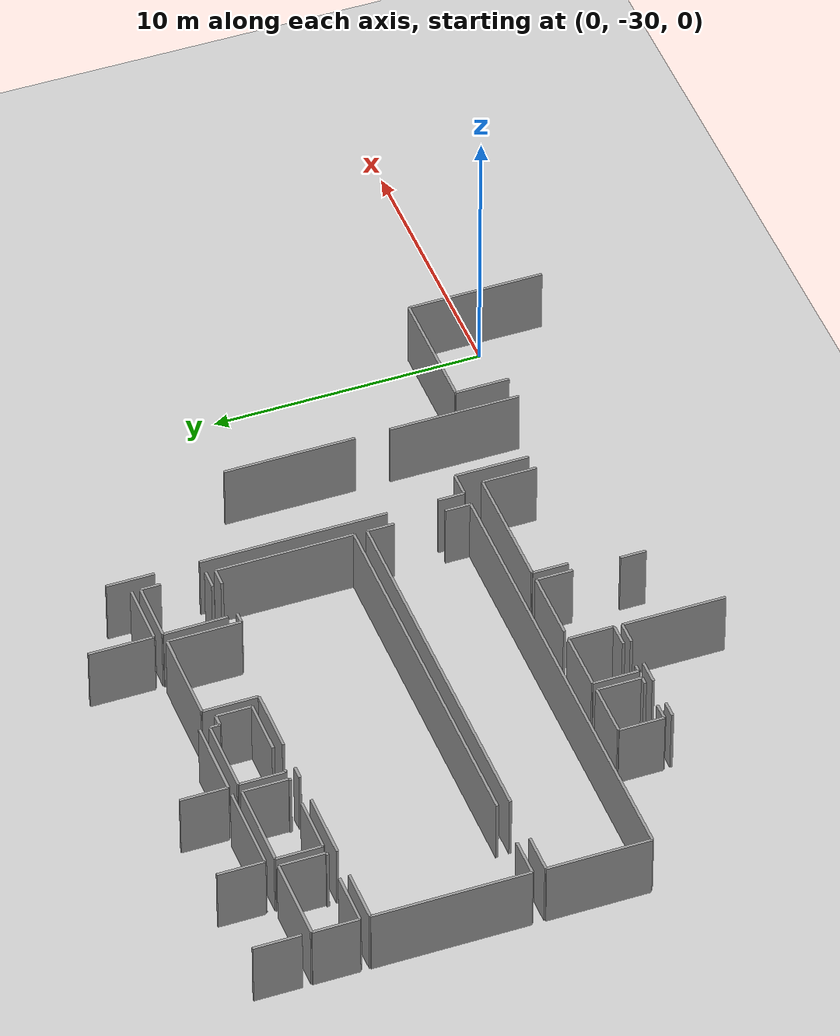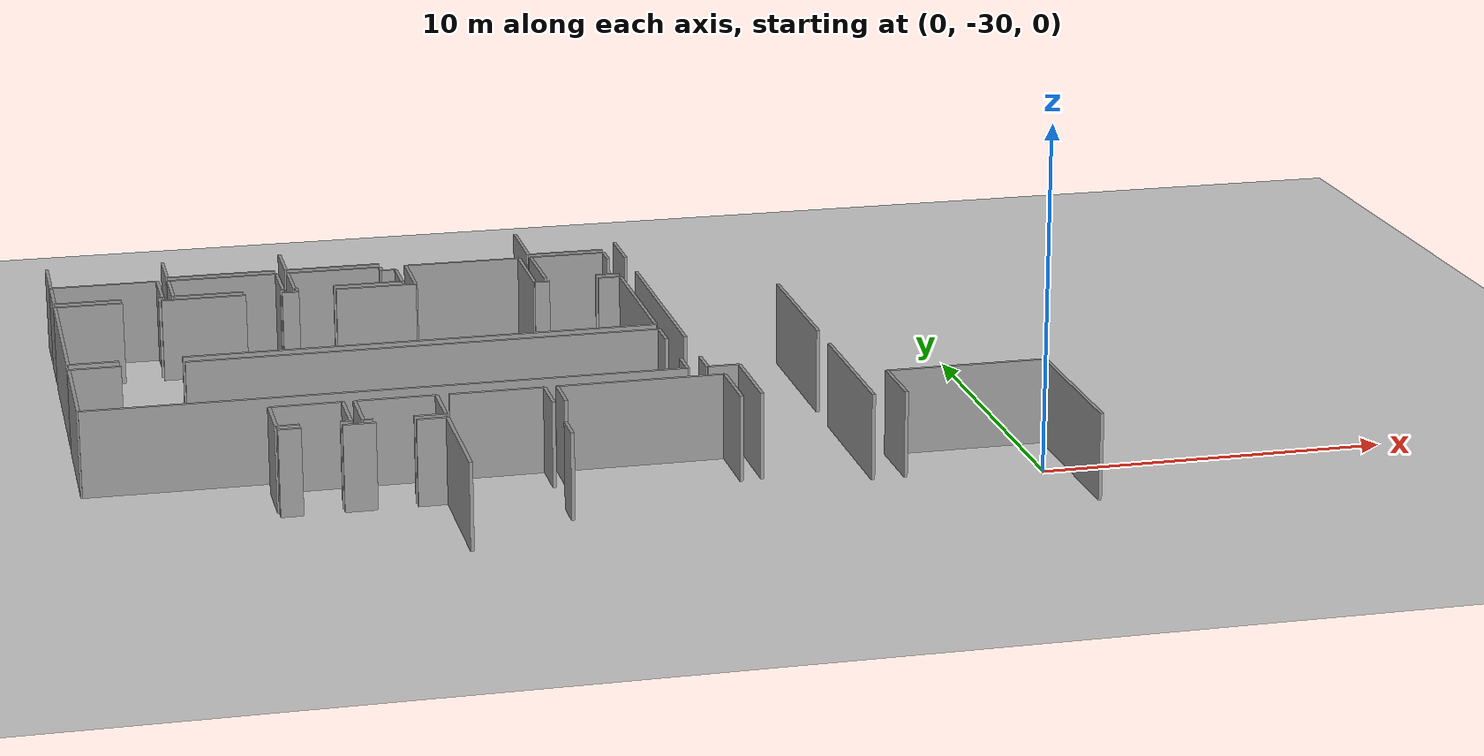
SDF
<sdf version="1.6">
 <world name="default">
  <model name="ground_plane">
   <static>1</static>
   <link name="link">
    <collision name="collision">
     <geometry><plane><normal>0 0 1</normal><size>100 100</size></plane></geometry>
     <surface><friction><ode><mu>100</mu><mu2>50</mu2></ode></friction></surface>
    </collision>
    <visual name="visual">
     <cast_shadows>0</cast_shadows>
     <geometry><plane><normal>0 0 1</normal><size>100 100</size></plane></geometry>
     <material>
      <script><uri>file://media/materials/scripts/gazebo.material</uri><name>Gazebo/Grey</name></script>
     </material>
    </visual>
   </link>
  </model>
  <model name="0510045925_40">
   <static>1</static>
   <link name="Wall_1019">
    <collision name="Wall_1019_Collision">
     <geometry><box><size>1.71772290043 0.1 2.5</size></box></geometry>
     <pose>0.858861450217 0 1.25 0 0 0</pose>
    </collision>
    <visual name="Wall_1019_Visual">
     <pose>0.858861450217 0 1.25 0 0 0</pose>
     <geometry><box><size>1.71772290043 0.1 2.5</size></box></geometry>
     <material>
      <script><uri>file://media/materials/scripts/gazebo.material</uri><name>Gazebo/Grey</name></script>
      <ambient>1 1 1 1</ambient>
     </material>
    </visual>
    <pose>107.613309307 -114.830765717 0 0 0 1.57079632679</pose>
   </link>
   <link name="Wall_1024">
    <collision name="Wall_1024_Collision">
     <geometry><box><size>1.70173345854 0.1 2.5</size></box></geometry>
     <pose>0.850866729271 0 1.25 0 0 0</pose>
    </collision>
    <visual name="Wall_1024_Visual">
     <pose>0.850866729271 0 1.25 0 0 0</pose>
     <geometry><box><size>1.70173345854 0.1 2.5</size></box></geometry>
     <material>
      <script><uri>file://media/materials/scripts/gazebo.material</uri><name>Gazebo/Grey</name></script>
      <ambient>1 1 1 1</ambient>
     </material>
    </visual>
    <pose>111.141899952 -114.825435903 0 0 0 1.57079632679</pose>
   </link>
   <link name="Wall_1028">
    <collision name="Wall_1028_Collision">
     <geometry><box><size>3.28570344775 0.1 2.5</size></box></geometry>
     <pose>1.64285172388 0 1.25 0 0 0</pose>
    </collision>
    <visual name="Wall_1028_Visual">
     <pose>1.64285172388 0 1.25 0 0 0</pose>
     <geometry><box><size>3.28570344775 0.1 2.5</size></box></geometry>
     <material>
      <script><uri>file://media/materials/scripts/gazebo.material</uri><name>Gazebo/Grey</name></script>
      <ambient>1 1 1 1</ambient>
     </material>
    </visual>
    <pose>114.42760336 -114.824928301 0 0 0 -3.14143816572</pose>
   </link>
   <link name="Wall_1029">
    <collision name="Wall_1029_Collision">
     <geometry><box><size>1.72127610974 0.1 2.5</size></box></geometry>
     <pose>0.860638054872 0 1.25 0 0 0</pose>
    </collision>
    <visual name="Wall_1029_Visual">
     <pose>0.860638054872 0 1.25 0 0 0</pose>
     <geometry><box><size>1.72127610974 0.1 2.5</size></box></geometry>
     <material>
      <script><uri>file://media/materials/scripts/gazebo.material</uri><name>Gazebo/Grey</name></script>
      <ambient>1 1 1 1</ambient>
     </material>
    </visual>
    <pose>114.768457653 -114.824928301 0 0 0 1.57079632679</pose>
   </link>
   <link name="Wall_1035">
    <collision name="Wall_1035_Collision">
     <geometry><box><size>2.86439542912 0.1 2.5</size></box></geometry>
     <pose>1.43219771456 0 1.25 0 0 0</pose>
    </collision>
    <visual name="Wall_1035_Visual">
     <pose>1.43219771456 0 1.25 0 0 0</pose>
     <geometry><box><size>2.86439542912 0.1 2.5</size></box></geometry>
     <material>
      <script><uri>file://media/materials/scripts/gazebo.material</uri><name>Gazebo/Grey</name></script>
      <ambient>1 1 1 1</ambient>
     </material>
    </visual>
    <pose>117.632851958 -114.822390295 0 0 0 -3.1407066003</pose>
   </link>
   <link name="Wall_1036">
    <collision name="Wall_1036_Collision">
     <geometry><box><size>2.35882338012 0.1 2.5</size></box></geometry>
     <pose>1.17941169006 0 1.25 0 0 0</pose>
    </collision>
    <visual name="Wall_1036_Visual">
     <pose>1.17941169006 0 1.25 0 0 0</pose>
     <geometry><box><size>2.35882338012 0.1 2.5</size></box></geometry>
     <material>
      <script><uri>file://media/materials/scripts/gazebo.material</uri><name>Gazebo/Grey</name></script>
      <ambient>1 1 1 1</ambient>
     </material>
    </visual>
    <pose>122.324864851 -114.837872135 0 0 0 1.57079632679</pose>
   </link>
   <link name="Wall_1039">
    <collision name="Wall_1039_Collision">
     <geometry><box><size>2.33699790108 0.1 2.5</size></box></geometry>
     <pose>1.16849895054 0 1.25 0 0 0</pose>
    </collision>
    <visual name="Wall_1039_Visual">
     <pose>1.16849895054 0 1.25 0 0 0</pose>
     <geometry><box><size>2.33699790108 0.1 2.5</size></box></geometry>
     <material>
      <script><uri>file://media/materials/scripts/gazebo.material</uri><name>Gazebo/Grey</name></script>
      <ambient>1 1 1 1</ambient>
     </material>
    </visual>
    <pose>124.661861374 -114.835334129 0 0 0 -3.14050664185</pose>
   </link>
   <link name="Wall_1052">
    <collision name="Wall_1052_Collision">
     <geometry><box><size>1.68701301997 0.1 2.5</size></box></geometry>
     <pose>0.843506509987 0 1.25 0 0 0</pose>
    </collision>
    <visual name="Wall_1052_Visual">
     <pose>0.843506509987 0 1.25 0 0 0</pose>
     <geometry><box><size>1.68701301997 0.1 2.5</size></box></geometry>
     <material>
      <script><uri>file://media/materials/scripts/gazebo.material</uri><name>Gazebo/Grey</name></script>
      <ambient>1 1 1 1</ambient>
     </material>
    </visual>
    <pose>107.613563108 -116.85863303 0 0 0 1.57079632679</pose>
   </link>
   <link name="Wall_1053">
    <collision name="Wall_1053_Collision">
     <geometry><box><size>3.20068018578 0.1 2.5</size></box></geometry>
     <pose>1.60034009289 0 1.25 0 0 0</pose>
    </collision>
    <visual name="Wall_1053_Visual">
     <pose>1.60034009289 0 1.25 0 0 0</pose>
     <geometry><box><size>3.20068018578 0.1 2.5</size></box></geometry>
     <material>
      <script><uri>file://media/materials/scripts/gazebo.material</uri><name>Gazebo/Grey</name></script>
      <ambient>1 1 1 1</ambient>
     </material>
    </visual>
    <pose>107.613563108 -115.17162001 0 0 0 0.0</pose>
   </link>
   <link name="Wall_1054">
    <collision name="Wall_1054_Collision">
     <geometry><box><size>1.69056622928 0.1 2.5</size></box></geometry>
     <pose>0.845283114642 0 1.25 0 0 0</pose>
    </collision>
    <visual name="Wall_1054_Visual">
     <pose>0.845283114642 0 1.25 0 0 0</pose>
     <geometry><box><size>1.69056622928 0.1 2.5</size></box></geometry>
     <material>
      <script><uri>file://media/materials/scripts/gazebo.material</uri><name>Gazebo/Grey</name></script>
      <ambient>1 1 1 1</ambient>
     </material>
    </visual>
    <pose>110.814243293 -115.17162001 0 0 0 -1.57079632679</pose>
   </link>
   <link name="Wall_1055">
    <collision name="Wall_1055_Collision">
     <geometry><box><size>0.117002106546 0.1 2.5</size></box></geometry>
     <pose>0.0585010532728 0 1.25 0 0 0</pose>
    </collision>
    <visual name="Wall_1055_Visual">
     <pose>0.0585010532728 0 1.25 0 0 0</pose>
     <geometry><box><size>0.117002106546 0.1 2.5</size></box></geometry>
     <material>
      <script><uri>file://media/materials/scripts/gazebo.material</uri><name>Gazebo/Grey</name></script>
      <ambient>1 1 1 1</ambient>
     </material>
    </visual>
    <pose>110.814243293 -116.862186239 0 0 0 3.14159265359</pose>
   </link>
   <link name="Wall_1056">
    <collision name="Wall_1056_Collision">
     <geometry><box><size>1.96365895952 0.1 2.5</size></box></geometry>
     <pose>0.981829479759 0 1.25 0 0 0</pose>
    </collision>
    <visual name="Wall_1056_Visual">
     <pose>0.981829479759 0 1.25 0 0 0</pose>
     <geometry><box><size>1.96365895952 0.1 2.5</size></box></geometry>
     <material>
      <script><uri>file://media/materials/scripts/gazebo.material</uri><name>Gazebo/Grey</name></script>
      <ambient>1 1 1 1</ambient>
     </material>
    </visual>
    <pose>109.577218852 -116.862186239 0 0 0 3.13978316868</pose>
   </link>
   <link name="Wall_1057">
    <collision name="Wall_1057_Collision">
     <geometry><box><size>1.67736859471 0.1 2.5</size></box></geometry>
     <pose>0.838684297353 0 1.25 0 0 0</pose>
    </collision>
    <visual name="Wall_1057_Visual">
     <pose>0.838684297353 0 1.25 0 0 0</pose>
     <geometry><box><size>1.67736859471 0.1 2.5</size></box></geometry>
     <material>
      <script><uri>file://media/materials/scripts/gazebo.material</uri><name>Gazebo/Grey</name></script>
      <ambient>1 1 1 1</ambient>
     </material>
    </visual>
    <pose>111.138854344 -116.85863303 0 0 0 1.57079632679</pose>
   </link>
   <link name="Wall_1058">
    <collision name="Wall_1058_Collision">
     <geometry><box><size>3.29484023248 0.1 2.5</size></box></geometry>
     <pose>1.64742011624 0 1.25 0 0 0</pose>
    </collision>
    <visual name="Wall_1058_Visual">
     <pose>1.64742011624 0 1.25 0 0 0</pose>
     <geometry><box><size>3.29484023248 0.1 2.5</size></box></geometry>
     <material>
      <script><uri>file://media/materials/scripts/gazebo.material</uri><name>Gazebo/Grey</name></script>
      <ambient>1 1 1 1</ambient>
     </material>
    </visual>
    <pose>111.138854344 -115.181264435 0 0 0 0.0</pose>
   </link>
   <link name="Wall_1059">
    <collision name="Wall_1059_Collision">
     <geometry><box><size>1.68904342529 0.1 2.5</size></box></geometry>
     <pose>0.844521712647 0 1.25 0 0 0</pose>
    </collision>
    <visual name="Wall_1059_Visual">
     <pose>0.844521712647 0 1.25 0 0 0</pose>
     <geometry><box><size>1.68904342529 0.1 2.5</size></box></geometry>
     <material>
      <script><uri>file://media/materials/scripts/gazebo.material</uri><name>Gazebo/Grey</name></script>
      <ambient>1 1 1 1</ambient>
     </material>
    </visual>
    <pose>114.433694576 -115.181264435 0 0 0 -1.57079632679</pose>
   </link>
   <link name="Wall_1060">
    <collision name="Wall_1060_Collision">
     <geometry><box><size>0.0855308240908 0.1 2.5</size></box></geometry>
     <pose>0.0427654120454 0 1.25 0 0 0</pose>
    </collision>
    <visual name="Wall_1060_Visual">
     <pose>0.0427654120454 0 1.25 0 0 0</pose>
     <geometry><box><size>0.0855308240908 0.1 2.5</size></box></geometry>
     <material>
      <script><uri>file://media/materials/scripts/gazebo.material</uri><name>Gazebo/Grey</name></script>
      <ambient>1 1 1 1</ambient>
     </material>
    </visual>
    <pose>114.433694576 -116.87030786 0 0 0 3.14159265359</pose>
   </link>
   <link name="Wall_1061">
    <collision name="Wall_1061_Collision">
     <geometry><box><size>2.09261905007 0.1 2.5</size></box></geometry>
     <pose>1.04630952504 0 1.25 0 0 0</pose>
    </collision>
    <visual name="Wall_1061_Visual">
     <pose>1.04630952504 0 1.25 0 0 0</pose>
     <geometry><box><size>2.09261905007 0.1 2.5</size></box></geometry>
     <material>
      <script><uri>file://media/materials/scripts/gazebo.material</uri><name>Gazebo/Grey</name></script>
      <ambient>1 1 1 1</ambient>
     </material>
    </visual>
    <pose>113.231440826 -116.87030786 0 0 0 3.1360135726</pose>
   </link>
   <link name="Wall_1062">
    <collision name="Wall_1062_Collision">
     <geometry><box><size>1.7027486612 0.1 2.5</size></box></geometry>
     <pose>0.851374330601 0 1.25 0 0 0</pose>
    </collision>
    <visual name="Wall_1062_Visual">
     <pose>0.851374330601 0 1.25 0 0 0</pose>
     <geometry><box><size>1.7027486612 0.1 2.5</size></box></geometry>
     <material>
      <script><uri>file://media/materials/scripts/gazebo.material</uri><name>Gazebo/Grey</name></script>
      <ambient>1 1 1 1</ambient>
     </material>
    </visual>
    <pose>114.77860968 -116.884013096 0 0 0 1.57079632679</pose>
   </link>
   <link name="Wall_1063">
    <collision name="Wall_1063_Collision">
     <geometry><box><size>2.84307504886 0.1 2.5</size></box></geometry>
     <pose>1.42153752443 0 1.25 0 0 0</pose>
    </collision>
    <visual name="Wall_1063_Visual">
     <pose>1.42153752443 0 1.25 0 0 0</pose>
     <geometry><box><size>2.84307504886 0.1 2.5</size></box></geometry>
     <material>
      <script><uri>file://media/materials/scripts/gazebo.material</uri><name>Gazebo/Grey</name></script>
      <ambient>1 1 1 1</ambient>
     </material>
    </visual>
    <pose>114.77860968 -115.181264435 0 0 0 0.0</pose>
   </link>
   <link name="Wall_1064">
    <collision name="Wall_1064_Collision">
     <geometry><box><size>0.359127940915 0.1 2.5</size></box></geometry>
     <pose>0.179563970458 0 1.25 0 0 0</pose>
    </collision>
    <visual name="Wall_1064_Visual">
     <pose>0.179563970458 0 1.25 0 0 0</pose>
     <geometry><box><size>0.359127940915 0.1 2.5</size></box></geometry>
     <material>
      <script><uri>file://media/materials/scripts/gazebo.material</uri><name>Gazebo/Grey</name></script>
      <ambient>1 1 1 1</ambient>
     </material>
    </visual>
    <pose>117.621684729 -115.181264435 0 0 0 -1.57079632679</pose>
   </link>
   <link name="Wall_1065">
    <collision name="Wall_1065_Collision">
     <geometry><box><size>0.439328951042 0.1 2.5</size></box></geometry>
     <pose>0.219664475521 0 1.25 0 0 0</pose>
    </collision>
    <visual name="Wall_1065_Visual">
     <pose>0.219664475521 0 1.25 0 0 0</pose>
     <geometry><box><size>0.439328951042 0.1 2.5</size></box></geometry>
     <material>
      <script><uri>file://media/materials/scripts/gazebo.material</uri><name>Gazebo/Grey</name></script>
      <ambient>1 1 1 1</ambient>
     </material>
    </visual>
    <pose>117.621684729 -115.540392376 0 0 0 0.0</pose>
   </link>
   <link name="Wall_1066">
    <collision name="Wall_1066_Collision">
     <geometry><box><size>1.30326641456 0.1 2.5</size></box></geometry>
     <pose>0.651633207279 0 1.25 0 0 0</pose>
    </collision>
    <visual name="Wall_1066_Visual">
     <pose>0.651633207279 0 1.25 0 0 0</pose>
     <geometry><box><size>1.30326641456 0.1 2.5</size></box></geometry>
     <material>
      <script><uri>file://media/materials/scripts/gazebo.material</uri><name>Gazebo/Grey</name></script>
      <ambient>1 1 1 1</ambient>
     </material>
    </visual>
    <pose>118.06101368 -115.540392376 0 0 0 -1.57079632679</pose>
   </link>
   <link name="Wall_1067">
    <collision name="Wall_1067_Collision">
     <geometry><box><size>2.09512448923 0.1 2.5</size></box></geometry>
     <pose>1.04756224461 0 1.25 0 0 0</pose>
    </collision>
    <visual name="Wall_1067_Visual">
     <pose>1.04756224461 0 1.25 0 0 0</pose>
     <geometry><box><size>2.09512448923 0.1 2.5</size></box></geometry>
     <material>
      <script><uri>file://media/materials/scripts/gazebo.material</uri><name>Gazebo/Grey</name></script>
      <ambient>1 1 1 1</ambient>
     </material>
    </visual>
    <pose>118.06101368 -116.84365879 0 0 0 3.14159265359</pose>
   </link>
   <link name="Wall_1068">
    <collision name="Wall_1068_Collision">
     <geometry><box><size>0.100115274627 0.1 2.5</size></box></geometry>
     <pose>0.0500576373136 0 1.25 0 0 0</pose>
    </collision>
    <visual name="Wall_1068_Visual">
     <pose>0.0500576373136 0 1.25 0 0 0</pose>
     <geometry><box><size>0.100115274627 0.1 2.5</size></box></geometry>
     <material>
      <script><uri>file://media/materials/scripts/gazebo.material</uri><name>Gazebo/Grey</name></script>
      <ambient>1 1 1 1</ambient>
     </material>
    </visual>
    <pose>114.87023172 -116.84365879 0 0 0 -2.72671451487</pose>
   </link>
   <link name="Wall_1069">
    <collision name="Wall_1069_Collision">
     <geometry><box><size>2.31237785843 0.1 2.5</size></box></geometry>
     <pose>1.15618892922 0 1.25 0 0 0</pose>
    </collision>
    <visual name="Wall_1069_Visual">
     <pose>1.15618892922 0 1.25 0 0 0</pose>
     <geometry><box><size>2.31237785843 0.1 2.5</size></box></geometry>
     <material>
      <script><uri>file://media/materials/scripts/gazebo.material</uri><name>Gazebo/Grey</name></script>
      <ambient>1 1 1 1</ambient>
     </material>
    </visual>
    <pose>122.336285881 -115.165528794 0 0 0 0.0</pose>
   </link>
   <link name="Wall_1070">
    <collision name="Wall_1070_Collision">
     <geometry><box><size>0.72028628715 0.1 2.5</size></box></geometry>
     <pose>0.360143143575 0 1.25 0 0 0</pose>
    </collision>
    <visual name="Wall_1070_Visual">
     <pose>0.360143143575 0 1.25 0 0 0</pose>
     <geometry><box><size>0.72028628715 0.1 2.5</size></box></geometry>
     <material>
      <script><uri>file://media/materials/scripts/gazebo.material</uri><name>Gazebo/Grey</name></script>
      <ambient>1 1 1 1</ambient>
     </material>
    </visual>
    <pose>124.648663739 -115.165528794 0 0 0 -1.57079632679</pose>
   </link>
   <link name="Wall_1071">
    <collision name="Wall_1071_Collision">
     <geometry><box><size>0.724854699119 0.1 2.5</size></box></geometry>
     <pose>0.36242734956 0 1.25 0 0 0</pose>
    </collision>
    <visual name="Wall_1071_Visual">
     <pose>0.36242734956 0 1.25 0 0 0</pose>
     <geometry><box><size>0.724854699119 0.1 2.5</size></box></geometry>
     <material>
      <script><uri>file://media/materials/scripts/gazebo.material</uri><name>Gazebo/Grey</name></script>
      <ambient>1 1 1 1</ambient>
     </material>
    </visual>
    <pose>124.648663739 -117.517245755 0 0 0 3.14159265359</pose>
   </link>
   <link name="Wall_1072">
    <collision name="Wall_1072_Collision">
     <geometry><box><size>2.35189182985 0.1 2.5</size></box></geometry>
     <pose>1.17594591492 0 1.25 0 0 0</pose>
    </collision>
    <visual name="Wall_1072_Visual">
     <pose>1.17594591492 0 1.25 0 0 0</pose>
     <geometry><box><size>2.35189182985 0.1 2.5</size></box></geometry>
     <material>
      <script><uri>file://media/materials/scripts/gazebo.material</uri><name>Gazebo/Grey</name></script>
      <ambient>1 1 1 1</ambient>
     </material>
    </visual>
    <pose>122.364965356 -117.517245755 0 0 0 1.58299084424</pose>
   </link>
   <link name="Wall_1073">
    <collision name="Wall_1073_Collision">
     <geometry><box><size>5.69579452298 0.1 2.5</size></box></geometry>
     <pose>2.84789726149 0 1.25 0 0 0</pose>
    </collision>
    <visual name="Wall_1073_Visual">
     <pose>2.84789726149 0 1.25 0 0 0</pose>
     <geometry><box><size>5.69579452298 0.1 2.5</size></box></geometry>
     <material>
      <script><uri>file://media/materials/scripts/gazebo.material</uri><name>Gazebo/Grey</name></script>
      <ambient>1 1 1 1</ambient>
     </material>
    </visual>
    <pose>107.609248496 -122.91228649 0 0 0 1.57079632679</pose>
   </link>
   <link name="Wall_1074">
    <collision name="Wall_1074_Collision">
     <geometry><box><size>1.98852820994 0.1 2.5</size></box></geometry>
     <pose>0.994264104972 0 1.25 0 0 0</pose>
    </collision>
    <visual name="Wall_1074_Visual">
     <pose>0.994264104972 0 1.25 0 0 0</pose>
     <geometry><box><size>1.98852820994 0.1 2.5</size></box></geometry>
     <material>
      <script><uri>file://media/materials/scripts/gazebo.material</uri><name>Gazebo/Grey</name></script>
      <ambient>1 1 1 1</ambient>
     </material>
    </visual>
    <pose>107.609248496 -117.216491967 0 0 0 0.0</pose>
   </link>
   <link name="Wall_1075">
    <collision name="Wall_1075_Collision">
     <geometry><box><size>2.52303241034 0.1 2.5</size></box></geometry>
     <pose>1.26151620517 0 1.25 0 0 0</pose>
    </collision>
    <visual name="Wall_1075_Visual">
     <pose>1.26151620517 0 1.25 0 0 0</pose>
     <geometry><box><size>2.52303241034 0.1 2.5</size></box></geometry>
     <material>
      <script><uri>file://media/materials/scripts/gazebo.material</uri><name>Gazebo/Grey</name></script>
      <ambient>1 1 1 1</ambient>
     </material>
    </visual>
    <pose>110.74825512 -117.216491967 0 0 0 0.0</pose>
   </link>
   <link name="Wall_1076">
    <collision name="Wall_1076_Collision">
     <geometry><box><size>0.502779117281 0.1 2.5</size></box></geometry>
     <pose>0.251389558641 0 1.25 0 0 0</pose>
    </collision>
    <visual name="Wall_1076_Visual">
     <pose>0.251389558641 0 1.25 0 0 0</pose>
     <geometry><box><size>0.502779117281 0.1 2.5</size></box></geometry>
     <material>
      <script><uri>file://media/materials/scripts/gazebo.material</uri><name>Gazebo/Grey</name></script>
      <ambient>1 1 1 1</ambient>
     </material>
    </visual>
    <pose>114.362376589 -117.216491967 0 0 0 0.0</pose>
   </link>
   <link name="Wall_1077">
    <collision name="Wall_1077_Collision">
     <geometry><box><size>2.42709575899 0.1 2.5</size></box></geometry>
     <pose>1.2135478795 0 1.25 0 0 0</pose>
    </collision>
    <visual name="Wall_1077_Visual">
     <pose>1.2135478795 0 1.25 0 0 0</pose>
     <geometry><box><size>2.42709575899 0.1 2.5</size></box></geometry>
     <material>
      <script><uri>file://media/materials/scripts/gazebo.material</uri><name>Gazebo/Grey</name></script>
      <ambient>1 1 1 1</ambient>
     </material>
    </visual>
    <pose>115.991269257 -117.216491967 0 0 0 0.0</pose>
   </link>
   <link name="Wall_1078">
    <collision name="Wall_1078_Collision">
     <geometry><box><size>2.0352275323 0.1 2.5</size></box></geometry>
     <pose>1.01761376615 0 1.25 0 0 0</pose>
    </collision>
    <visual name="Wall_1078_Visual">
     <pose>1.01761376615 0 1.25 0 0 0</pose>
     <geometry><box><size>2.0352275323 0.1 2.5</size></box></geometry>
     <material>
      <script><uri>file://media/materials/scripts/gazebo.material</uri><name>Gazebo/Grey</name></script>
      <ambient>1 1 1 1</ambient>
     </material>
    </visual>
    <pose>118.418365016 -117.216491967 0 0 0 1.57079632679</pose>
   </link>
   <link name="Wall_1079">
    <collision name="Wall_1079_Collision">
     <geometry><box><size>3.55092510342 0.1 2.5</size></box></geometry>
     <pose>1.77546255171 0 1.25 0 0 0</pose>
    </collision>
    <visual name="Wall_1079_Visual">
     <pose>1.77546255171 0 1.25 0 0 0</pose>
     <geometry><box><size>3.55092510342 0.1 2.5</size></box></geometry>
     <material>
      <script><uri>file://media/materials/scripts/gazebo.material</uri><name>Gazebo/Grey</name></script>
      <ambient>1 1 1 1</ambient>
     </material>
    </visual>
    <pose>118.418365016 -115.181264435 0 0 0 0.0</pose>
   </link>
   <link name="Wall_1080">
    <collision name="Wall_1080_Collision">
     <geometry><box><size>2.67810461663 0.1 2.5</size></box></geometry>
     <pose>1.33905230832 0 1.25 0 0 0</pose>
    </collision>
    <visual name="Wall_1080_Visual">
     <pose>1.33905230832 0 1.25 0 0 0</pose>
     <geometry><box><size>2.67810461663 0.1 2.5</size></box></geometry>
     <material>
      <script><uri>file://media/materials/scripts/gazebo.material</uri><name>Gazebo/Grey</name></script>
      <ambient>1 1 1 1</ambient>
     </material>
    </visual>
    <pose>121.96929012 -115.181264435 0 0 0 -1.57079632679</pose>
   </link>
   <link name="Wall_1081">
    <collision name="Wall_1081_Collision">
     <geometry><box><size>0.447704372985 0.1 2.5</size></box></geometry>
     <pose>0.223852186493 0 1.25 0 0 0</pose>
    </collision>
    <visual name="Wall_1081_Visual">
     <pose>0.223852186493 0 1.25 0 0 0</pose>
     <geometry><box><size>0.447704372985 0.1 2.5</size></box></geometry>
     <material>
      <script><uri>file://media/materials/scripts/gazebo.material</uri><name>Gazebo/Grey</name></script>
      <ambient>1 1 1 1</ambient>
     </material>
    </visual>
    <pose>121.96929012 -117.859369052 0 0 0 0.0</pose>
   </link>
   <link name="Wall_1082">
    <collision name="Wall_1082_Collision">
     <geometry><box><size>0.69262201467 0.1 2.5</size></box></geometry>
     <pose>0.346311007335 0 1.25 0 0 0</pose>
    </collision>
    <visual name="Wall_1082_Visual">
     <pose>0.346311007335 0 1.25 0 0 0</pose>
     <geometry><box><size>0.69262201467 0.1 2.5</size></box></geometry>
     <material>
      <script><uri>file://media/materials/scripts/gazebo.material</uri><name>Gazebo/Grey</name></script>
      <ambient>1 1 1 1</ambient>
     </material>
    </visual>
    <pose>123.939290881 -117.859369052 0 0 0 0.0</pose>
   </link>
   <link name="Wall_1083">
    <collision name="Wall_1083_Collision">
     <geometry><box><size>5.05063323266 0.1 2.5</size></box></geometry>
     <pose>2.52531661633 0 1.25 0 0 0</pose>
    </collision>
    <visual name="Wall_1083_Visual">
     <pose>2.52531661633 0 1.25 0 0 0</pose>
     <geometry><box><size>5.05063323266 0.1 2.5</size></box></geometry>
     <material>
      <script><uri>file://media/materials/scripts/gazebo.material</uri><name>Gazebo/Grey</name></script>
      <ambient>1 1 1 1</ambient>
     </material>
    </visual>
    <pose>124.631912896 -117.859369052 0 0 0 -1.57079632679</pose>
   </link>
   <link name="Wall_1084">
    <collision name="Wall_1084_Collision">
     <geometry><box><size>13.7892439278 0.1 2.5</size></box></geometry>
     <pose>6.89462196391 0 1.25 0 0 0</pose>
    </collision>
    <visual name="Wall_1084_Visual">
     <pose>6.89462196391 0 1.25 0 0 0</pose>
     <geometry><box><size>13.7892439278 0.1 2.5</size></box></geometry>
     <material>
      <script><uri>file://media/materials/scripts/gazebo.material</uri><name>Gazebo/Grey</name></script>
      <ambient>1 1 1 1</ambient>
     </material>
    </visual>
    <pose>124.631912896 -122.910002284 0 0 0 3.14159265359</pose>
   </link>
   <link name="Wall_1085">
    <collision name="Wall_1085_Collision">
     <geometry><box><size>1.43549837835 0.1 2.5</size></box></geometry>
     <pose>0.717749189175 0 1.25 0 0 0</pose>
    </collision>
    <visual name="Wall_1085_Visual">
     <pose>0.717749189175 0 1.25 0 0 0</pose>
     <geometry><box><size>1.43549837835 0.1 2.5</size></box></geometry>
     <material>
      <script><uri>file://media/materials/scripts/gazebo.material</uri><name>Gazebo/Grey</name></script>
      <ambient>1 1 1 1</ambient>
     </material>
    </visual>
    <pose>109.044745057 -122.910002284 0 0 0 -3.14000142438</pose>
   </link>
   <link name="Wall_1086">
    <collision name="Wall_1086_Collision">
     <geometry><box><size>3.77553869191 0.1 2.5</size></box></geometry>
     <pose>1.88776934596 0 1.25 0 0 0</pose>
    </collision>
    <visual name="Wall_1086_Visual">
     <pose>1.88776934596 0 1.25 0 0 0</pose>
     <geometry><box><size>3.77553869191 0.1 2.5</size></box></geometry>
     <material>
      <script><uri>file://media/materials/scripts/gazebo.material</uri><name>Gazebo/Grey</name></script>
      <ambient>1 1 1 1</ambient>
     </material>
    </visual>
    <pose>107.604680084 -127.161417223 0 0 0 1.57079632679</pose>
   </link>
   <link name="Wall_1087">
    <collision name="Wall_1087_Collision">
     <geometry><box><size>1.46417603614 0.1 2.5</size></box></geometry>
     <pose>0.732088018071 0 1.25 0 0 0</pose>
    </collision>
    <visual name="Wall_1087_Visual">
     <pose>0.732088018071 0 1.25 0 0 0</pose>
     <geometry><box><size>1.46417603614 0.1 2.5</size></box></geometry>
     <material>
      <script><uri>file://media/materials/scripts/gazebo.material</uri><name>Gazebo/Grey</name></script>
      <ambient>1 1 1 1</ambient>
     </material>
    </visual>
    <pose>107.604680084 -123.385878531 0 0 0 0.0</pose>
   </link>
   <link name="Wall_1088">
    <collision name="Wall_1088_Collision">
     <geometry><box><size>13.7661480673 0.1 2.5</size></box></geometry>
     <pose>6.88307403365 0 1.25 0 0 0</pose>
    </collision>
    <visual name="Wall_1088_Visual">
     <pose>6.88307403365 0 1.25 0 0 0</pose>
     <geometry><box><size>13.7661480673 0.1 2.5</size></box></geometry>
     <material>
      <script><uri>file://media/materials/scripts/gazebo.material</uri><name>Gazebo/Grey</name></script>
      <ambient>1 1 1 1</ambient>
     </material>
    </visual>
    <pose>110.86627243 -123.385878531 0 0 0 0.0</pose>
   </link>
   <link name="Wall_1089">
    <collision name="Wall_1089_Collision">
     <geometry><box><size>0.998451815944 0.1 2.5</size></box></geometry>
     <pose>0.499225907972 0 1.25 0 0 0</pose>
    </collision>
    <visual name="Wall_1089_Visual">
     <pose>0.499225907972 0 1.25 0 0 0</pose>
     <geometry><box><size>0.998451815944 0.1 2.5</size></box></geometry>
     <material>
      <script><uri>file://media/materials/scripts/gazebo.material</uri><name>Gazebo/Grey</name></script>
      <ambient>1 1 1 1</ambient>
     </material>
    </visual>
    <pose>124.632420497 -123.385878531 0 0 0 -1.57079632679</pose>
   </link>
   <link name="Wall_1090">
    <collision name="Wall_1090_Collision">
     <geometry><box><size>0.940585264333 0.1 2.5</size></box></geometry>
     <pose>0.470292632167 0 1.25 0 0 0</pose>
    </collision>
    <visual name="Wall_1090_Visual">
     <pose>0.470292632167 0 1.25 0 0 0</pose>
     <geometry><box><size>0.940585264333 0.1 2.5</size></box></geometry>
     <material>
      <script><uri>file://media/materials/scripts/gazebo.material</uri><name>Gazebo/Grey</name></script>
      <ambient>1 1 1 1</ambient>
     </material>
    </visual>
    <pose>124.632420497 -126.249765234 0 0 0 -1.57079632679</pose>
   </link>
   <link name="Wall_1091">
    <collision name="Wall_1091_Collision">
     <geometry><box><size>17.0277649942 0.1 2.5</size></box></geometry>
     <pose>8.51388249708 0 1.25 0 0 0</pose>
    </collision>
    <visual name="Wall_1091_Visual">
     <pose>8.51388249708 0 1.25 0 0 0</pose>
     <geometry><box><size>17.0277649942 0.1 2.5</size></box></geometry>
     <material>
      <script><uri>file://media/materials/scripts/gazebo.material</uri><name>Gazebo/Grey</name></script>
      <ambient>1 1 1 1</ambient>
     </material>
    </visual>
    <pose>124.632420497 -127.190350499 0 0 0 3.13989347054</pose>
   </link>
   <link name="Wall_1096">
    <collision name="Wall_1096_Collision">
     <geometry><box><size>4.83058805614 0.1 2.5</size></box></geometry>
     <pose>2.41529402807 0 1.25 0 0 0</pose>
    </collision>
    <visual name="Wall_1096_Visual">
     <pose>2.41529402807 0 1.25 0 0 0</pose>
     <geometry><box><size>4.83058805614 0.1 2.5</size></box></geometry>
     <material>
      <script><uri>file://media/materials/scripts/gazebo.material</uri><name>Gazebo/Grey</name></script>
      <ambient>1 1 1 1</ambient>
     </material>
    </visual>
    <pose>129.108449024 -119.757544225 0 0 0 -1.57079632679</pose>
   </link>
   <link name="Wall_1097">
    <collision name="Wall_1097_Collision">
     <geometry><box><size>4.8163752189 0.1 2.5</size></box></geometry>
     <pose>2.40818760945 0 1.25 0 0 0</pose>
    </collision>
    <visual name="Wall_1097_Visual">
     <pose>2.40818760945 0 1.25 0 0 0</pose>
     <geometry><box><size>4.8163752189 0.1 2.5</size></box></geometry>
     <material>
      <script><uri>file://media/materials/scripts/gazebo.material</uri><name>Gazebo/Grey</name></script>
      <ambient>1 1 1 1</ambient>
     </material>
    </visual>
    <pose>129.108449024 -125.875155453 0 0 0 -1.57079632679</pose>
   </link>
   <link name="Wall_1102">
    <collision name="Wall_1102_Collision">
     <geometry><box><size>2.73013375295 0.1 2.5</size></box></geometry>
     <pose>1.36506687648 0 1.25 0 0 0</pose>
    </collision>
    <visual name="Wall_1102_Visual">
     <pose>1.36506687648 0 1.25 0 0 0</pose>
     <geometry><box><size>2.73013375295 0.1 2.5</size></box></geometry>
     <material>
      <script><uri>file://media/materials/scripts/gazebo.material</uri><name>Gazebo/Grey</name></script>
      <ambient>1 1 1 1</ambient>
     </material>
    </visual>
    <pose>126.132636228 -129.907794218 0 0 0 1.57079632679</pose>
   </link>
   <link name="Wall_1103">
    <collision name="Wall_1103_Collision">
     <geometry><box><size>0.927387629756 0.1 2.5</size></box></geometry>
     <pose>0.463693814878 0 1.25 0 0 0</pose>
    </collision>
    <visual name="Wall_1103_Visual">
     <pose>0.463693814878 0 1.25 0 0 0</pose>
     <geometry><box><size>0.927387629756 0.1 2.5</size></box></geometry>
     <material>
      <script><uri>file://media/materials/scripts/gazebo.material</uri><name>Gazebo/Grey</name></script>
      <ambient>1 1 1 1</ambient>
     </material>
    </visual>
    <pose>126.132636228 -127.177660465 0 0 0 3.14159265359</pose>
   </link>
   <link name="Wall_1104">
    <collision name="Wall_1104_Collision">
     <geometry><box><size>0.971802746123 0.1 2.5</size></box></geometry>
     <pose>0.485901373062 0 1.25 0 0 0</pose>
    </collision>
    <visual name="Wall_1104_Visual">
     <pose>0.485901373062 0 1.25 0 0 0</pose>
     <geometry><box><size>0.971802746123 0.1 2.5</size></box></geometry>
     <material>
      <script><uri>file://media/materials/scripts/gazebo.material</uri><name>Gazebo/Grey</name></script>
      <ambient>1 1 1 1</ambient>
     </material>
    </visual>
    <pose>125.205248598 -127.177660465 0 0 0 1.57079632679</pose>
   </link>
   <link name="Wall_1105">
    <collision name="Wall_1105_Collision">
     <geometry><box><size>6.86251617979 0.1 2.5</size></box></geometry>
     <pose>3.4312580899 0 1.25 0 0 0</pose>
    </collision>
    <visual name="Wall_1105_Visual">
     <pose>3.4312580899 0 1.25 0 0 0</pose>
     <geometry><box><size>6.86251617979 0.1 2.5</size></box></geometry>
     <material>
      <script><uri>file://media/materials/scripts/gazebo.material</uri><name>Gazebo/Grey</name></script>
      <ambient>1 1 1 1</ambient>
     </material>
    </visual>
    <pose>125.205248598 -124.341691835 0 0 0 1.57079632679</pose>
   </link>
   <link name="Wall_1106">
    <collision name="Wall_1106_Collision">
     <geometry><box><size>1.75985381082 0.1 2.5</size></box></geometry>
     <pose>0.879926905408 0 1.25 0 0 0</pose>
    </collision>
    <visual name="Wall_1106_Visual">
     <pose>0.879926905408 0 1.25 0 0 0</pose>
     <geometry><box><size>1.75985381082 0.1 2.5</size></box></geometry>
     <material>
      <script><uri>file://media/materials/scripts/gazebo.material</uri><name>Gazebo/Grey</name></script>
      <ambient>1 1 1 1</ambient>
     </material>
    </visual>
    <pose>125.205248598 -115.860435014 0 0 0 1.57079632679</pose>
   </link>
   <link name="Wall_1110">
    <collision name="Wall_1110_Collision">
     <geometry><box><size>2.68292682927 0.1 2.5</size></box></geometry>
     <pose>1.34146341463 0 1.25 0 0 0</pose>
    </collision>
    <visual name="Wall_1110_Visual">
     <pose>1.34146341463 0 1.25 0 0 0</pose>
     <geometry><box><size>2.68292682927 0.1 2.5</size></box></geometry>
     <material>
      <script><uri>file://media/materials/scripts/gazebo.material</uri><name>Gazebo/Grey</name></script>
      <ambient>1 1 1 1</ambient>
     </material>
    </visual>
    <pose>117.693002716 -127.967741935 0 0 0 0.0</pose>
   </link>
   <link name="Wall_1111">
    <collision name="Wall_1111_Collision">
     <geometry><box><size>1.33752950433 0.1 2.5</size></box></geometry>
     <pose>0.668764752164 0 1.25 0 0 0</pose>
    </collision>
    <visual name="Wall_1111_Visual">
     <pose>0.668764752164 0 1.25 0 0 0</pose>
     <geometry><box><size>1.33752950433 0.1 2.5</size></box></geometry>
     <material>
      <script><uri>file://media/materials/scripts/gazebo.material</uri><name>Gazebo/Grey</name></script>
      <ambient>1 1 1 1</ambient>
     </material>
    </visual>
    <pose>120.375929545 -127.967741935 0 0 0 -1.57079632679</pose>
   </link>
   <link name="Wall_1112">
    <collision name="Wall_1112_Collision">
     <geometry><box><size>0.946422679627 0.1 2.5</size></box></geometry>
     <pose>0.473211339814 0 1.25 0 0 0</pose>
    </collision>
    <visual name="Wall_1112_Visual">
     <pose>0.473211339814 0 1.25 0 0 0</pose>
     <geometry><box><size>0.946422679627 0.1 2.5</size></box></geometry>
     <material>
      <script><uri>file://media/materials/scripts/gazebo.material</uri><name>Gazebo/Grey</name></script>
      <ambient>1 1 1 1</ambient>
     </material>
    </visual>
    <pose>120.375929545 -131.049389609 0 0 0 -1.57079632679</pose>
   </link>
   <link name="Wall_1120">
    <collision name="Wall_1120_Collision">
     <geometry><box><size>1.31621024847 0.1 2.5</size></box></geometry>
     <pose>0.658105124235 0 1.25 0 0 0</pose>
    </collision>
    <visual name="Wall_1120_Visual">
     <pose>0.658105124235 0 1.25 0 0 0</pose>
     <geometry><box><size>1.31621024847 0.1 2.5</size></box></geometry>
     <material>
      <script><uri>file://media/materials/scripts/gazebo.material</uri><name>Gazebo/Grey</name></script>
      <ambient>1 1 1 1</ambient>
     </material>
    </visual>
    <pose>120.733027081 -129.276084363 0 0 0 1.57079632679</pose>
   </link>
   <link name="Wall_1121">
    <collision name="Wall_1121_Collision">
     <geometry><box><size>4.79099515241 0.1 2.5</size></box></geometry>
     <pose>2.3954975762 0 1.25 0 0 0</pose>
    </collision>
    <visual name="Wall_1121_Visual">
     <pose>2.3954975762 0 1.25 0 0 0</pose>
     <geometry><box><size>4.79099515241 0.1 2.5</size></box></geometry>
     <material>
      <script><uri>file://media/materials/scripts/gazebo.material</uri><name>Gazebo/Grey</name></script>
      <ambient>1 1 1 1</ambient>
     </material>
    </visual>
    <pose>120.733027081 -127.959874115 0 0 0 0.0</pose>
   </link>
   <link name="Wall_1122">
    <collision name="Wall_1122_Collision">
     <geometry><box><size>2.00527905383 0.1 2.5</size></box></geometry>
     <pose>1.00263952692 0 1.25 0 0 0</pose>
    </collision>
    <visual name="Wall_1122_Visual">
     <pose>1.00263952692 0 1.25 0 0 0</pose>
     <geometry><box><size>2.00527905383 0.1 2.5</size></box></geometry>
     <material>
      <script><uri>file://media/materials/scripts/gazebo.material</uri><name>Gazebo/Grey</name></script>
      <ambient>1 1 1 1</ambient>
     </material>
    </visual>
    <pose>125.524022233 -127.959874115 0 0 0 -1.57079632679</pose>
   </link>
   <link name="Wall_1126">
    <collision name="Wall_1126_Collision">
     <geometry><box><size>4.67196264054 0.1 2.5</size></box></geometry>
     <pose>2.33598132027 0 1.25 0 0 0</pose>
    </collision>
    <visual name="Wall_1126_Visual">
     <pose>2.33598132027 0 1.25 0 0 0</pose>
     <geometry><box><size>4.67196264054 0.1 2.5</size></box></geometry>
     <material>
      <script><uri>file://media/materials/scripts/gazebo.material</uri><name>Gazebo/Grey</name></script>
      <ambient>1 1 1 1</ambient>
     </material>
    </visual>
    <pose>130.042435471 -128.683967412 0 0 0 0.0</pose>
   </link>
   <link name="Wall_1127">
    <collision name="Wall_1127_Collision">
     <geometry><box><size>5.02652216949 0.1 2.5</size></box></geometry>
     <pose>2.51326108474 0 1.25 0 0 0</pose>
    </collision>
    <visual name="Wall_1127_Visual">
     <pose>2.51326108474 0 1.25 0 0 0</pose>
     <geometry><box><size>5.02652216949 0.1 2.5</size></box></geometry>
     <material>
      <script><uri>file://media/materials/scripts/gazebo.material</uri><name>Gazebo/Grey</name></script>
      <ambient>1 1 1 1</ambient>
     </material>
    </visual>
    <pose>134.714398112 -128.683967412 0 0 0 -1.57079632679</pose>
   </link>
   <link name="Wall_1130">
    <collision name="Wall_1130_Collision">
     <geometry><box><size>1.9944109878 0.1 2.5</size></box></geometry>
     <pose>0.997205493898 0 1.25 0 0 0</pose>
    </collision>
    <visual name="Wall_1130_Visual">
     <pose>0.997205493898 0 1.25 0 0 0</pose>
     <geometry><box><size>1.9944109878 0.1 2.5</size></box></geometry>
     <material>
      <script><uri>file://media/materials/scripts/gazebo.material</uri><name>Gazebo/Grey</name></script>
      <ambient>1 1 1 1</ambient>
     </material>
    </visual>
    <pose>130.055886906 -130.678333037 0 0 0 1.57754094328</pose>
   </link>
   <link name="Wall_1131">
    <collision name="Wall_1131_Collision">
     <geometry><box><size>1.65554173752 0.1 2.5</size></box></geometry>
     <pose>0.82777086876 0 1.25 0 0 0</pose>
    </collision>
    <visual name="Wall_1131_Visual">
     <pose>0.82777086876 0 1.25 0 0 0</pose>
     <geometry><box><size>1.65554173752 0.1 2.5</size></box></geometry>
     <material>
      <script><uri>file://media/materials/scripts/gazebo.material</uri><name>Gazebo/Grey</name></script>
      <ambient>1 1 1 1</ambient>
     </material>
    </visual>
    <pose>112.714195071 -129.628867288 0 0 0 1.57079632679</pose>
   </link>
   <link name="Wall_1132">
    <collision name="Wall_1132_Collision">
     <geometry><box><size>2.0243141037 0.1 2.5</size></box></geometry>
     <pose>1.01215705185 0 1.25 0 0 0</pose>
    </collision>
    <visual name="Wall_1132_Visual">
     <pose>1.01215705185 0 1.25 0 0 0</pose>
     <geometry><box><size>2.0243141037 0.1 2.5</size></box></geometry>
     <material>
      <script><uri>file://media/materials/scripts/gazebo.material</uri><name>Gazebo/Grey</name></script>
      <ambient>1 1 1 1</ambient>
     </material>
    </visual>
    <pose>112.714195071 -127.97332555 0 0 0 0.0</pose>
   </link>
   <link name="Wall_1133">
    <collision name="Wall_1133_Collision">
     <geometry><box><size>1.64361310627 0.1 2.5</size></box></geometry>
     <pose>0.821806553133 0 1.25 0 0 0</pose>
    </collision>
    <visual name="Wall_1133_Visual">
     <pose>0.821806553133 0 1.25 0 0 0</pose>
     <geometry><box><size>1.64361310627 0.1 2.5</size></box></geometry>
     <material>
      <script><uri>file://media/materials/scripts/gazebo.material</uri><name>Gazebo/Grey</name></script>
      <ambient>1 1 1 1</ambient>
     </material>
    </visual>
    <pose>114.738509175 -127.97332555 0 0 0 -1.57079632679</pose>
   </link>
   <link name="Wall_1134">
    <collision name="Wall_1134_Collision">
     <geometry><box><size>0.290094160047 0.1 2.5</size></box></geometry>
     <pose>0.145047080023 0 1.25 0 0 0</pose>
    </collision>
    <visual name="Wall_1134_Visual">
     <pose>0.145047080023 0 1.25 0 0 0</pose>
     <geometry><box><size>0.290094160047 0.1 2.5</size></box></geometry>
     <material>
      <script><uri>file://media/materials/scripts/gazebo.material</uri><name>Gazebo/Grey</name></script>
      <ambient>1 1 1 1</ambient>
     </material>
    </visual>
    <pose>114.738509175 -129.616938656 0 0 0 3.14159265359</pose>
   </link>
   <link name="Wall_1135">
    <collision name="Wall_1135_Collision">
     <geometry><box><size>0.623702314874 0.1 2.5</size></box></geometry>
     <pose>0.311851157437 0 1.25 0 0 0</pose>
    </collision>
    <visual name="Wall_1135_Visual">
     <pose>0.311851157437 0 1.25 0 0 0</pose>
     <geometry><box><size>0.623702314874 0.1 2.5</size></box></geometry>
     <material>
      <script><uri>file://media/materials/scripts/gazebo.material</uri><name>Gazebo/Grey</name></script>
      <ambient>1 1 1 1</ambient>
     </material>
    </visual>
    <pose>113.337783305 -129.616938656 0 0 0 -3.12246596717</pose>
   </link>
   <link name="Wall_1136">
    <collision name="Wall_1136_Collision">
     <geometry><box><size>1.6679779701 0.1 2.5</size></box></geometry>
     <pose>0.833988985051 0 1.25 0 0 0</pose>
    </collision>
    <visual name="Wall_1136_Visual">
     <pose>0.833988985051 0 1.25 0 0 0</pose>
     <geometry><box><size>1.6679779701 0.1 2.5</size></box></geometry>
     <material>
      <script><uri>file://media/materials/scripts/gazebo.material</uri><name>Gazebo/Grey</name></script>
      <ambient>1 1 1 1</ambient>
     </material>
    </visual>
    <pose>115.069719043 -129.631659095 0 0 0 1.57079632679</pose>
   </link>
   <link name="Wall_1137">
    <collision name="Wall_1137_Collision">
     <geometry><box><size>2.27050074871 0.1 2.5</size></box></geometry>
     <pose>1.13525037436 0 1.25 0 0 0</pose>
    </collision>
    <visual name="Wall_1137_Visual">
     <pose>1.13525037436 0 1.25 0 0 0</pose>
     <geometry><box><size>2.27050074871 0.1 2.5</size></box></geometry>
     <material>
      <script><uri>file://media/materials/scripts/gazebo.material</uri><name>Gazebo/Grey</name></script>
      <ambient>1 1 1 1</ambient>
     </material>
    </visual>
    <pose>115.069719043 -127.963681125 0 0 0 0.0</pose>
   </link>
   <link name="Wall_1138">
    <collision name="Wall_1138_Collision">
     <geometry><box><size>1.66543996345 0.1 2.5</size></box></geometry>
     <pose>0.832719981726 0 1.25 0 0 0</pose>
    </collision>
    <visual name="Wall_1138_Visual">
     <pose>0.832719981726 0 1.25 0 0 0</pose>
     <geometry><box><size>1.66543996345 0.1 2.5</size></box></geometry>
     <material>
      <script><uri>file://media/materials/scripts/gazebo.material</uri><name>Gazebo/Grey</name></script>
      <ambient>1 1 1 1</ambient>
     </material>
    </visual>
    <pose>117.340219791 -127.963681125 0 0 0 -1.57079632679</pose>
   </link>
   <link name="Wall_1139">
    <collision name="Wall_1139_Collision">
     <geometry><box><size>0.881449709398 0.1 2.5</size></box></geometry>
     <pose>0.440724854699 0 1.25 0 0 0</pose>
    </collision>
    <visual name="Wall_1139_Visual">
     <pose>0.440724854699 0 1.25 0 0 0</pose>
     <geometry><box><size>0.881449709398 0.1 2.5</size></box></geometry>
     <material>
      <script><uri>file://media/materials/scripts/gazebo.material</uri><name>Gazebo/Grey</name></script>
      <ambient>1 1 1 1</ambient>
     </material>
    </visual>
    <pose>117.340219791 -129.629121088 0 0 0 3.14159265359</pose>
   </link>
   <link name="Wall_1140">
    <collision name="Wall_1140_Collision">
     <geometry><box><size>0.2682793083 0.1 2.5</size></box></geometry>
     <pose>0.13413965415 0 1.25 0 0 0</pose>
    </collision>
    <visual name="Wall_1140_Visual">
     <pose>0.13413965415 0 1.25 0 0 0</pose>
     <geometry><box><size>0.2682793083 0.1 2.5</size></box></geometry>
     <material>
      <script><uri>file://media/materials/scripts/gazebo.material</uri><name>Gazebo/Grey</name></script>
      <ambient>1 1 1 1</ambient>
     </material>
    </visual>
    <pose>115.337986346 -129.629121088 0 0 0 -3.1321321979</pose>
   </link>
   <link name="Wall_1142">
    <collision name="Wall_1142_Collision">
     <geometry><box><size>0.62917184843 0.1 2.5</size></box></geometry>
     <pose>0.314585924215 0 1.25 0 0 0</pose>
    </collision>
    <visual name="Wall_1142_Visual">
     <pose>0.314585924215 0 1.25 0 0 0</pose>
     <geometry><box><size>0.62917184843 0.1 2.5</size></box></geometry>
     <material>
      <script><uri>file://media/materials/scripts/gazebo.material</uri><name>Gazebo/Grey</name></script>
      <ambient>1 1 1 1</ambient>
     </material>
    </visual>
    <pose>112.718002081 -129.922260856 0 0 0 0.0</pose>
   </link>
   <link name="Wall_1143">
    <collision name="Wall_1143_Collision">
     <geometry><box><size>0.906068373899 0.1 2.5</size></box></geometry>
     <pose>0.45303418695 0 1.25 0 0 0</pose>
    </collision>
    <visual name="Wall_1143_Visual">
     <pose>0.45303418695 0 1.25 0 0 0</pose>
     <geometry><box><size>0.906068373899 0.1 2.5</size></box></geometry>
     <material>
      <script><uri>file://media/materials/scripts/gazebo.material</uri><name>Gazebo/Grey</name></script>
      <ambient>1 1 1 1</ambient>
     </material>
    </visual>
    <pose>114.466688663 -129.922260856 0 0 0 0.0</pose>
   </link>
   <link name="Wall_1144">
    <collision name="Wall_1144_Collision">
     <geometry><box><size>0.854546838913 0.1 2.5</size></box></geometry>
     <pose>0.427273419456 0 1.25 0 0 0</pose>
    </collision>
    <visual name="Wall_1144_Visual">
     <pose>0.427273419456 0 1.25 0 0 0</pose>
     <geometry><box><size>0.854546838913 0.1 2.5</size></box></geometry>
     <material>
      <script><uri>file://media/materials/scripts/gazebo.material</uri><name>Gazebo/Grey</name></script>
      <ambient>1 1 1 1</ambient>
     </material>
    </visual>
    <pose>116.475520926 -129.922260856 0 0 0 0.0</pose>
   </link>
   <link name="Wall_1145">
    <collision name="Wall_1145_Collision">
     <geometry><box><size>3.78772112383 0.1 2.5</size></box></geometry>
     <pose>1.89386056191 0 1.25 0 0 0</pose>
    </collision>
    <visual name="Wall_1145_Visual">
     <pose>1.89386056191 0 1.25 0 0 0</pose>
     <geometry><box><size>3.78772112383 0.1 2.5</size></box></geometry>
     <material>
      <script><uri>file://media/materials/scripts/gazebo.material</uri><name>Gazebo/Grey</name></script>
      <ambient>1 1 1 1</ambient>
     </material>
    </visual>
    <pose>117.330067765 -129.922260856 0 0 0 -1.57079632679</pose>
   </link>
   <pose>-133.95 101.083118449 0 0 0 0</pose>
  </model>
 </world>
</sdf>
